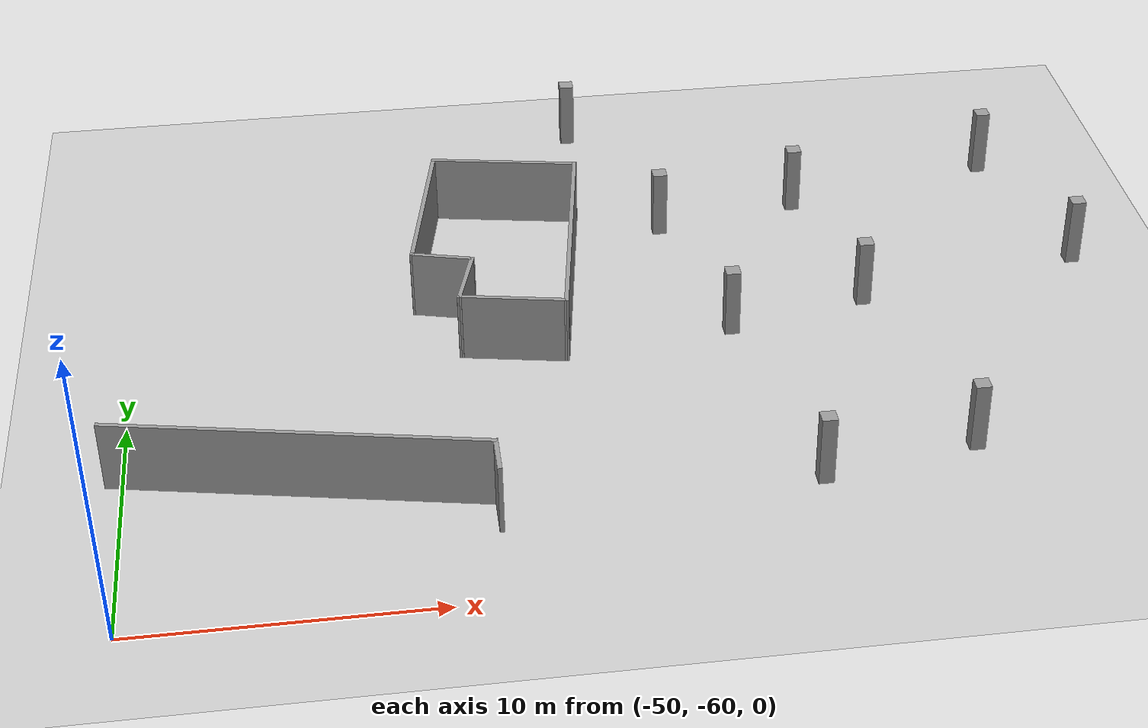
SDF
<sdf version="1.6">
 <world name="default">
  <model name="ground_plane">
   <static>1</static>
   <link name="link">
    <collision name="collision">
     <geometry><plane><normal>0 0 1</normal><size>100 100</size></plane></geometry>
     <surface>
      <contact><collide_bitmask>65535</collide_bitmask></contact>
      <friction><ode><mu>100</mu><mu2>50</mu2></ode></friction>
     </surface>
    </collision>
    <visual name="visual">
     <cast_shadows>0</cast_shadows>
     <geometry><plane><normal>0 0 1</normal><size>100 100</size></plane></geometry>
     <material>
      <script><uri>file://media/materials/scripts/gazebo.material</uri><name>Gazebo/Grey</name></script>
     </material>
    </visual>
   </link>
  </model>
  <model name="parking_area_big_2">
   <pose>0.028574 -0.058085 0 0 -0 0</pose>
   <link name="Wall_359">
    <collision name="Wall_359_Collision">
     <geometry><box><size>0.51 0.5 2.5</size></box></geometry>
     <pose>0 0 1.25 0 -0 0</pose>
    </collision>
    <visual name="Wall_359_Visual">
     <pose>0 0 1.25 0 -0 0</pose>
     <geometry><box><size>0.51 0.5 2.5</size></box></geometry>
     <material>
      <script><uri>file://media/materials/scripts/gazebo.material</uri><name>Gazebo/Grey</name></script>
      <ambient>1 1 1 1</ambient>
     </material>
     <meta><layer>0</layer></meta>
    </visual>
    <pose>-33.5787 -33.2314 0 0 -0 0</pose>
   </link>
   <link name="Wall_407">
    <collision name="Wall_407_Collision">
     <geometry><box><size>5.36536 0.15 2.5</size></box></geometry>
     <pose>0 0 1.25 0 -0 0</pose>
    </collision>
    <visual name="Wall_407_Visual">
     <pose>0 0 1.25 0 -0 0</pose>
     <geometry><box><size>5.36536 0.15 2.5</size></box></geometry>
     <material>
      <script><uri>file://media/materials/scripts/gazebo.material</uri><name>Gazebo/Grey</name></script>
      <ambient>1 1 1 1</ambient>
     </material>
     <meta><layer>0</layer></meta>
    </visual>
    <pose>-36.5386 -38.7329 0 0 -0 -0.185027</pose>
   </link>
   <link name="Wall_408">
    <collision name="Wall_408_Collision">
     <geometry><box><size>9.05632 0.15 2.5</size></box></geometry>
     <pose>0 0 1.25 0 -0 0</pose>
    </collision>
    <visual name="Wall_408_Visual">
     <pose>0 0 1.25 0 -0 0</pose>
     <geometry><box><size>9.05632 0.15 2.5</size></box></geometry>
     <material>
      <script><uri>file://media/materials/scripts/gazebo.material</uri><name>Gazebo/Grey</name></script>
      <ambient>1 1 1 1</ambient>
     </material>
     <meta><layer>0</layer></meta>
    </visual>
    <pose>-34.6377 -43.6162 0 0 -0 -1.72008</pose>
   </link>
   <link name="Wall_409">
    <collision name="Wall_409_Collision">
     <geometry><box><size>3.75867 0.15 2.5</size></box></geometry>
     <pose>0 0 1.25 0 -0 0</pose>
    </collision>
    <visual name="Wall_409_Visual">
     <pose>0 0 1.25 0 -0 0</pose>
     <geometry><box><size>3.75867 0.15 2.5</size></box></geometry>
     <material>
      <script><uri>file://media/materials/scripts/gazebo.material</uri><name>Gazebo/Grey</name></script>
      <ambient>1 1 1 1</ambient>
     </material>
     <meta><layer>0</layer></meta>
    </visual>
    <pose>-37.071 -47.6747 0 0 -0 2.94913</pose>
   </link>
   <link name="Wall_410">
    <collision name="Wall_410_Collision">
     <geometry><box><size>2.5 0.15 2.5</size></box></geometry>
     <pose>0 0 1.25 0 -0 0</pose>
    </collision>
    <visual name="Wall_410_Visual">
     <pose>0 0 1.25 0 -0 0</pose>
     <geometry><box><size>2.5 0.15 2.5</size></box></geometry>
     <material>
      <script><uri>file://media/materials/scripts/gazebo.material</uri><name>Gazebo/Grey</name></script>
      <ambient>1 1 1 1</ambient>
     </material>
     <meta><layer>0</layer></meta>
    </visual>
    <pose>-38.538 -46.1946 0 0 -0 1.309</pose>
   </link>
   <link name="Wall_411">
    <collision name="Wall_411_Collision">
     <geometry><box><size>2.25 0.15 2.5</size></box></geometry>
     <pose>0 0 1.25 0 -0 0</pose>
    </collision>
    <visual name="Wall_411_Visual">
     <pose>0 0 1.25 0 -0 0</pose>
     <geometry><box><size>2.25 0.15 2.5</size></box></geometry>
     <material>
      <script><uri>file://media/materials/scripts/gazebo.material</uri><name>Gazebo/Grey</name></script>
      <ambient>1 1 1 1</ambient>
     </material>
     <meta><layer>0</layer></meta>
    </visual>
    <pose>-39.2481 -44.7879 0 0 -0 2.87979</pose>
   </link>
   <link name="Wall_412">
    <collision name="Wall_412_Collision">
     <geometry><box><size>6.51966 0.15 2.5</size></box></geometry>
     <pose>0 0 1.25 0 -0 0</pose>
    </collision>
    <visual name="Wall_412_Visual">
     <pose>0 0 1.25 0 -0 0</pose>
     <geometry><box><size>6.51966 0.15 2.5</size></box></geometry>
     <material>
      <script><uri>file://media/materials/scripts/gazebo.material</uri><name>Gazebo/Grey</name></script>
      <ambient>1 1 1 1</ambient>
     </material>
     <meta><layer>0</layer></meta>
    </visual>
    <pose>-39.682 -41.3846 0 0 -0 1.38758</pose>
   </link>
   <link name="Wall_421">
    <collision name="Wall_421_Collision">
     <geometry><box><size>0.51 0.5 2.5</size></box></geometry>
     <pose>0 0 1.25 0 -0 0</pose>
    </collision>
    <visual name="Wall_421_Visual">
     <pose>0 0 1.25 0 -0 0</pose>
     <geometry><box><size>0.51 0.5 2.5</size></box></geometry>
     <material>
      <script><uri>file://media/materials/scripts/gazebo.material</uri><name>Gazebo/Grey</name></script>
      <ambient>1 1 1 1</ambient>
     </material>
     <meta><layer>0</layer></meta>
    </visual>
    <pose>-30.9704 -40.3215 0 0 -0 0</pose>
   </link>
   <link name="Wall_423">
    <collision name="Wall_423_Collision">
     <geometry><box><size>0.51 0.5 2.5</size></box></geometry>
     <pose>0 0 1.25 0 -0 0</pose>
    </collision>
    <visual name="Wall_423_Visual">
     <pose>0 0 1.25 0 -0 0</pose>
     <geometry><box><size>0.51 0.5 2.5</size></box></geometry>
     <material>
      <script><uri>file://media/materials/scripts/gazebo.material</uri><name>Gazebo/Grey</name></script>
      <ambient>1 1 1 1</ambient>
     </material>
     <meta><layer>0</layer></meta>
    </visual>
    <pose>-29.4613 -47.0501 0 0 -0 0</pose>
   </link>
   <link name="Wall_425">
    <collision name="Wall_425_Collision">
     <geometry><box><size>0.51 0.5 2.5</size></box></geometry>
     <pose>0 0 1.25 0 -0 0</pose>
    </collision>
    <visual name="Wall_425_Visual">
     <pose>0 0 1.25 0 -0 0</pose>
     <geometry><box><size>0.51 0.5 2.5</size></box></geometry>
     <material>
      <script><uri>file://media/materials/scripts/gazebo.material</uri><name>Gazebo/Grey</name></script>
      <ambient>1 1 1 1</ambient>
     </material>
     <meta><layer>0</layer></meta>
    </visual>
    <pose>-27.9707 -55.5449 0 0 -0 0</pose>
   </link>
   <link name="Wall_427">
    <collision name="Wall_427_Collision">
     <geometry><box><size>0.51 0.5 2.5</size></box></geometry>
     <pose>0 0 1.25 0 -0 0</pose>
    </collision>
    <visual name="Wall_427_Visual">
     <pose>0 0 1.25 0 -0 0</pose>
     <geometry><box><size>0.51 0.5 2.5</size></box></geometry>
     <material>
      <script><uri>file://media/materials/scripts/gazebo.material</uri><name>Gazebo/Grey</name></script>
      <ambient>1 1 1 1</ambient>
     </material>
     <meta><layer>0</layer></meta>
    </visual>
    <pose>-22.7663 -54.5413 0 0 -0 0</pose>
   </link>
   <link name="Wall_429">
    <collision name="Wall_429_Collision">
     <geometry><box><size>0.51 0.5 2.5</size></box></geometry>
     <pose>0 0 1.25 0 -0 0</pose>
    </collision>
    <visual name="Wall_429_Visual">
     <pose>0 0 1.25 0 -0 0</pose>
     <geometry><box><size>0.51 0.5 2.5</size></box></geometry>
     <material>
      <script><uri>file://media/materials/scripts/gazebo.material</uri><name>Gazebo/Grey</name></script>
      <ambient>1 1 1 1</ambient>
     </material>
     <meta><layer>0</layer></meta>
    </visual>
    <pose>-25.7735 -39.3372 0 0 -0 0</pose>
   </link>
   <link name="Wall_431">
    <collision name="Wall_431_Collision">
     <geometry><box><size>0.51 0.5 2.5</size></box></geometry>
     <pose>0 0 1.25 0 -0 0</pose>
    </collision>
    <visual name="Wall_431_Visual">
     <pose>0 0 1.25 0 -0 0</pose>
     <geometry><box><size>0.51 0.5 2.5</size></box></geometry>
     <material>
      <script><uri>file://media/materials/scripts/gazebo.material</uri><name>Gazebo/Grey</name></script>
      <ambient>1 1 1 1</ambient>
     </material>
     <meta><layer>0</layer></meta>
    </visual>
    <pose>-24.5366 -45.9027 0 0 -0 0</pose>
   </link>
   <link name="Wall_433">
    <collision name="Wall_433_Collision">
     <geometry><box><size>0.51 0.5 2.5</size></box></geometry>
     <pose>0 0 1.25 0 -0 0</pose>
    </collision>
    <visual name="Wall_433_Visual">
     <pose>0 0 1.25 0 -0 0</pose>
     <geometry><box><size>0.51 0.5 2.5</size></box></geometry>
     <material>
      <script><uri>file://media/materials/scripts/gazebo.material</uri><name>Gazebo/Grey</name></script>
      <ambient>1 1 1 1</ambient>
     </material>
     <meta><layer>0</layer></meta>
    </visual>
    <pose>-18.0649 -37.599 0 0 -0 0</pose>
   </link>
   <link name="Wall_437">
    <collision name="Wall_437_Collision">
     <geometry><box><size>0.51 0.5 2.5</size></box></geometry>
     <pose>0 0 1.25 0 -0 0</pose>
    </collision>
    <visual name="Wall_437_Visual">
     <pose>0 0 1.25 0 -0 0</pose>
     <geometry><box><size>0.51 0.5 2.5</size></box></geometry>
     <material>
      <script><uri>file://media/materials/scripts/gazebo.material</uri><name>Gazebo/Grey</name></script>
      <ambient>1 1 1 1</ambient>
     </material>
     <meta><layer>0</layer></meta>
    </visual>
    <pose>-16.3883 -44.2867 0 0 -0 0</pose>
   </link>
   <link name="Wall_515">
    <collision name="Wall_515_Collision">
     <geometry><box><size>12.5189 0.15 2.5</size></box></geometry>
     <pose>0 0 1.25 0 -0 0</pose>
    </collision>
    <visual name="Wall_515_Visual">
     <pose>0 0 1.25 0 -0 0</pose>
     <geometry><box><size>12.5189 0.15 2.5</size></box></geometry>
     <material>
      <script><uri>file://media/materials/scripts/gazebo.material</uri><name>Gazebo/Grey</name></script>
      <ambient>1 1 1 1</ambient>
     </material>
     <meta><layer>0</layer></meta>
    </visual>
    <pose>-44.4432 -54.0597 0 0 -0 -0.202609</pose>
   </link>
   <link name="Wall_516">
    <collision name="Wall_516_Collision">
     <geometry><box><size>1.5 0.15 2.5</size></box></geometry>
     <pose>0 0 1.25 0 -0 0</pose>
    </collision>
    <visual name="Wall_516_Visual">
     <pose>0 0 1.25 0 -0 0</pose>
     <geometry><box><size>1.5 0.15 2.5</size></box></geometry>
     <material>
      <script><uri>file://media/materials/scripts/gazebo.material</uri><name>Gazebo/Grey</name></script>
      <ambient>1 1 1 1</ambient>
     </material>
     <meta><layer>0</layer></meta>
    </visual>
    <pose>-38.3565 -55.9792 0 0 -0 -1.5708</pose>
   </link>
   <static>1</static>
  </model>
 </world>
</sdf>
